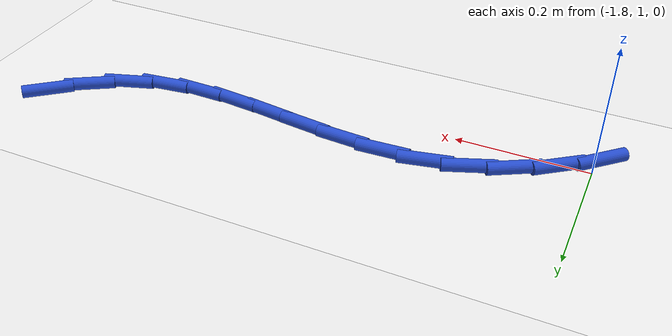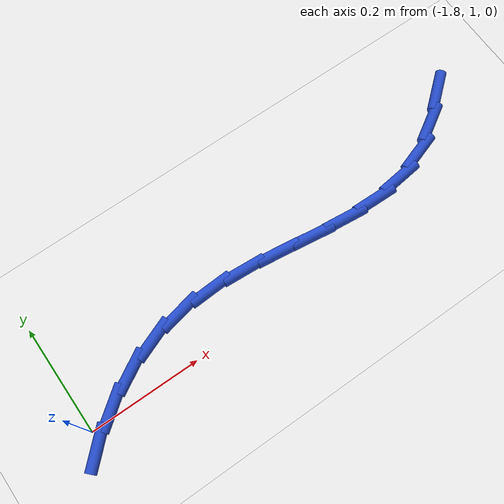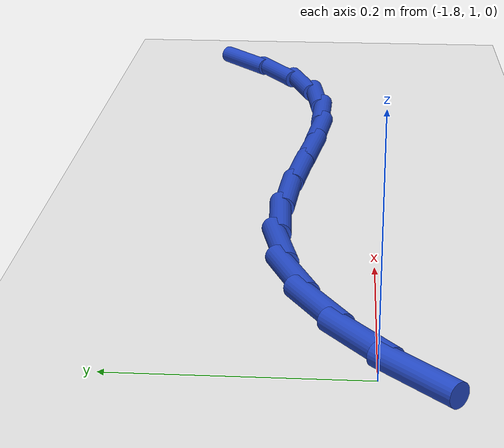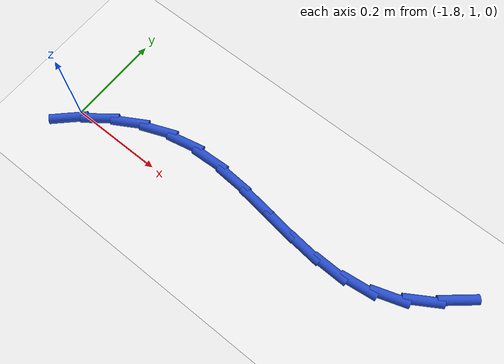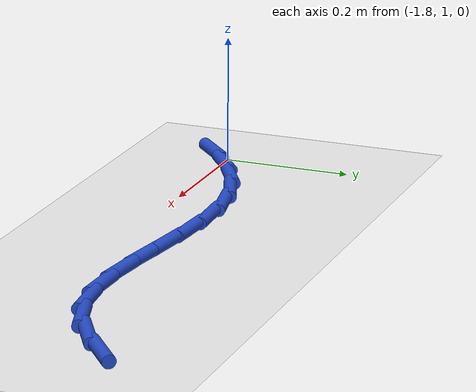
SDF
<sdf version="1.6">
 <world name="default">
  <model name="ground_plane">
   <static>1</static>
   <link name="link">
    <collision name="collision">
     <geometry><plane><normal>0 0 1</normal><size>100 100</size></plane></geometry>
     <surface><friction><ode><mu>100</mu><mu2>50</mu2></ode></friction></surface>
    </collision>
    <visual name="visual">
     <cast_shadows>0</cast_shadows>
     <geometry><plane><normal>0 0 1</normal><size>100 100</size></plane></geometry>
     <material>
      <script><uri>file://media/materials/scripts/gazebo.material</uri><name>Gazebo/WhiteGlow</name></script>
     </material>
    </visual>
   </link>
  </model>
  <model name="line">
   <link name="link_28">
    <pose>-0.9721720208702888 1.1556487624005107 0.01 0 1.57 0.6964872384445349</pose>
    <collision name="collision">
     <geometry><cylinder><radius>0.01</radius><length>0.08</length></cylinder></geometry>
    </collision>
    <visual name="visual">
     <material>
      <script><name>Gazebo/Blue</name><uri>file://media/materials/scripts/gazebo.material</uri></script>
     </material>
     <geometry><cylinder><radius>0.01</radius><length>0.08</length></cylinder></geometry>
    </visual>
   </link>
   <link name="link_29">
    <pose>-1.0225857057745684 1.1134877381629487 0.01 0 1.57 0.5476073281481527</pose>
    <collision name="collision">
     <geometry><cylinder><radius>0.01</radius><length>0.08</length></cylinder></geometry>
    </collision>
    <visual name="visual">
     <material>
      <script><name>Gazebo/Blue</name><uri>file://media/materials/scripts/gazebo.material</uri></script>
     </material>
     <geometry><cylinder><radius>0.01</radius><length>0.08</length></cylinder></geometry>
    </visual>
   </link>
   <link name="link_30">
    <pose>-1.0761561154175647 1.080819540406 0.01 0 1.57 0.32080627798269395</pose>
    <collision name="collision">
     <geometry><cylinder><radius>0.01</radius><length>0.08</length></cylinder></geometry>
    </collision>
    <visual name="visual">
     <material>
      <script><name>Gazebo/Blue</name><uri>file://media/materials/scripts/gazebo.material</uri></script>
     </material>
     <geometry><cylinder><radius>0.01</radius><length>0.08</length></cylinder></geometry>
    </visual>
   </link>
   <link name="link_31">
    <pose>-1.1334203462199768 1.0617915259872972 0.01 0 1.57 0.11998899364728974</pose>
    <collision name="collision">
     <geometry><cylinder><radius>0.01</radius><length>0.08</length></cylinder></geometry>
    </collision>
    <visual name="visual">
     <material>
      <script><name>Gazebo/Blue</name><uri>file://media/materials/scripts/gazebo.material</uri></script>
     </material>
     <geometry><cylinder><radius>0.01</radius><length>0.08</length></cylinder></geometry>
    </visual>
   </link>
   <link name="link_32">
    <pose>-1.1938352987625815 1.0545074056673722 0.01 0 1.57 -0.02079781427790681</pose>
    <collision name="collision">
     <geometry><cylinder><radius>0.01</radius><length>0.08</length></cylinder></geometry>
    </collision>
    <visual name="visual">
     <material>
      <script><name>Gazebo/Blue</name><uri>file://media/materials/scripts/gazebo.material</uri></script>
     </material>
     <geometry><cylinder><radius>0.01</radius><length>0.08</length></cylinder></geometry>
    </visual>
   </link>
   <link name="link_33">
    <pose>-1.256633164390631 1.0558136523577855 0.01 0 1.57 -0.10430531037092637</pose>
    <collision name="collision">
     <geometry><cylinder><radius>0.01</radius><length>0.08</length></cylinder></geometry>
    </collision>
    <visual name="visual">
     <material>
      <script><name>Gazebo/Blue</name><uri>file://media/materials/scripts/gazebo.material</uri></script>
     </material>
     <geometry><cylinder><radius>0.01</radius><length>0.08</length></cylinder></geometry>
    </visual>
   </link>
   <link name="link_34">
    <pose>-1.3210461344493778 1.062556738970097 0.01 0 1.57 -0.13744183568586238</pose>
    <collision name="collision">
     <geometry><cylinder><radius>0.01</radius><length>0.08</length></cylinder></geometry>
    </collision>
    <visual name="visual">
     <material>
      <script><name>Gazebo/Blue</name><uri>file://media/materials/scripts/gazebo.material</uri></script>
     </material>
     <geometry><cylinder><radius>0.01</radius><length>0.08</length></cylinder></geometry>
    </visual>
   </link>
   <link name="link_35">
    <pose>-1.3863064002840753 1.0715831384158685 0.01 0 1.57 -0.12418495157387244</pose>
    <collision name="collision">
     <geometry><cylinder><radius>0.01</radius><length>0.08</length></cylinder></geometry>
    </collision>
    <visual name="visual">
     <material>
      <script><name>Gazebo/Blue</name><uri>file://media/materials/scripts/gazebo.material</uri></script>
     </material>
     <geometry><cylinder><radius>0.01</radius><length>0.08</length></cylinder></geometry>
    </visual>
   </link>
   <link name="link_36">
    <pose>-1.4516461532399758 1.0797393236066597 0.01 0 1.57 -0.06383199337935684</pose>
    <collision name="collision">
     <geometry><cylinder><radius>0.01</radius><length>0.08</length></cylinder></geometry>
    </collision>
    <visual name="visual">
     <material>
      <script><name>Gazebo/Blue</name><uri>file://media/materials/scripts/gazebo.material</uri></script>
     </material>
     <geometry><cylinder><radius>0.01</radius><length>0.08</length></cylinder></geometry>
    </visual>
   </link>
   <link name="link_37">
    <pose>-1.516297584662332 1.083871767454031 0.01 0 1.57 0.048143955151538374</pose>
    <collision name="collision">
     <geometry><cylinder><radius>0.01</radius><length>0.08</length></cylinder></geometry>
    </collision>
    <visual name="visual">
     <material>
      <script><name>Gazebo/Blue</name><uri>file://media/materials/scripts/gazebo.material</uri></script>
     </material>
     <geometry><cylinder><radius>0.01</radius><length>0.08</length></cylinder></geometry>
    </visual>
   </link>
   <link name="link_38">
    <pose>-1.5794928858963975 1.080826942869544 0.01 0 1.57 0.21035462060172683</pose>
    <collision name="collision">
     <geometry><cylinder><radius>0.01</radius><length>0.08</length></cylinder></geometry>
    </collision>
    <visual name="visual">
     <material>
      <script><name>Gazebo/Blue</name><uri>file://media/materials/scripts/gazebo.material</uri></script>
     </material>
     <geometry><cylinder><radius>0.01</radius><length>0.08</length></cylinder></geometry>
    </visual>
   </link>
   <link name="link_39">
    <pose>-1.6404936046615821 1.0678024840004512 0.01 0 1.57 0.3767955570147108</pose>
    <collision name="collision">
     <geometry><cylinder><radius>0.01</radius><length>0.08</length></cylinder></geometry>
    </collision>
    <visual name="visual">
     <material>
      <script><name>Gazebo/Blue</name><uri>file://media/materials/scripts/gazebo.material</uri></script>
     </material>
     <geometry><cylinder><radius>0.01</radius><length>0.08</length></cylinder></geometry>
    </visual>
   </link>
   <link name="link_40">
    <pose>-1.6987902122426644 1.0447344109288552 0.01 0 1.57 0.5239490454955263</pose>
    <collision name="collision">
     <geometry><cylinder><radius>0.01</radius><length>0.08</length></cylinder></geometry>
    </collision>
    <visual name="visual">
     <material>
      <script><name>Gazebo/Blue</name><uri>file://media/materials/scripts/gazebo.material</uri></script>
     </material>
     <geometry><cylinder><radius>0.01</radius><length>0.08</length></cylinder></geometry>
    </visual>
   </link>
   <link name="link_41">
    <pose>-1.7539806591216909 1.0128444109490506 0.01 0 1.57 0.6523657815205205</pose>
    <collision name="collision">
     <geometry><cylinder><radius>0.01</radius><length>0.08</length></cylinder></geometry>
    </collision>
    <visual name="visual">
     <material>
      <script><name>Gazebo/Blue</name><uri>file://media/materials/scripts/gazebo.material</uri></script>
     </material>
     <geometry><cylinder><radius>0.01</radius><length>0.08</length></cylinder></geometry>
    </visual>
   </link>
   <link name="link_42">
    <pose>-1.8056635164481067 0.973361595784859 0.01 0 1.57 0.7648145195389496</pose>
    <collision name="collision">
     <geometry><cylinder><radius>0.01</radius><length>0.08</length></cylinder></geometry>
    </collision>
    <visual name="visual">
     <material>
      <script><name>Gazebo/Blue</name><uri>file://media/materials/scripts/gazebo.material</uri></script>
     </material>
     <geometry><cylinder><radius>0.01</radius><length>0.08</length></cylinder></geometry>
    </visual>
   </link>
  </model>
 </world>
</sdf>
